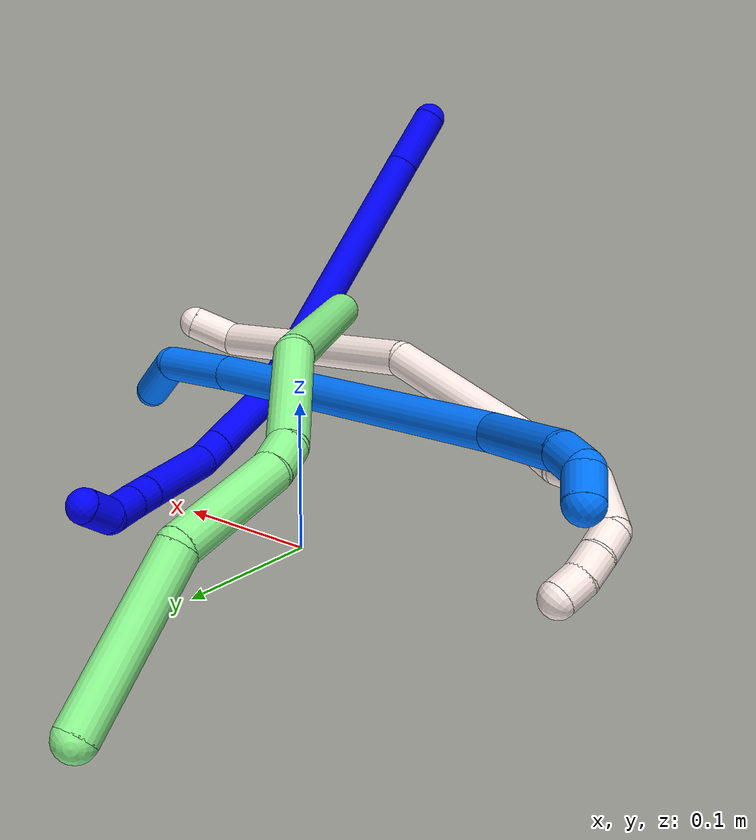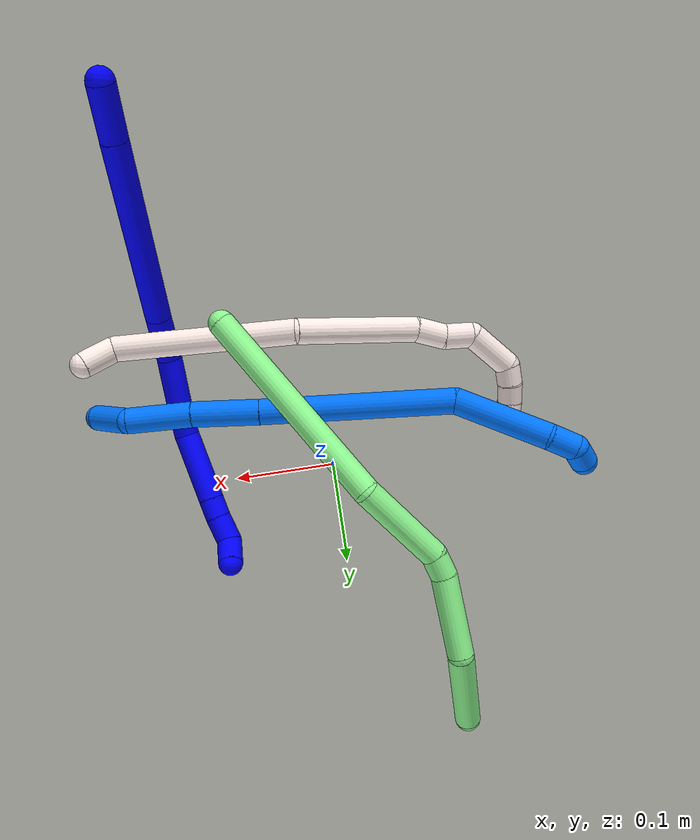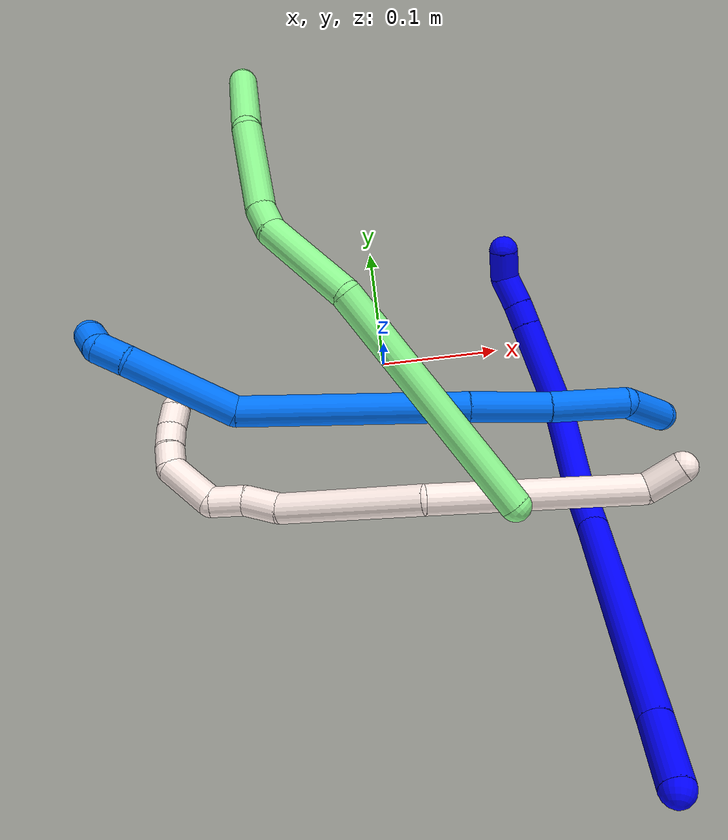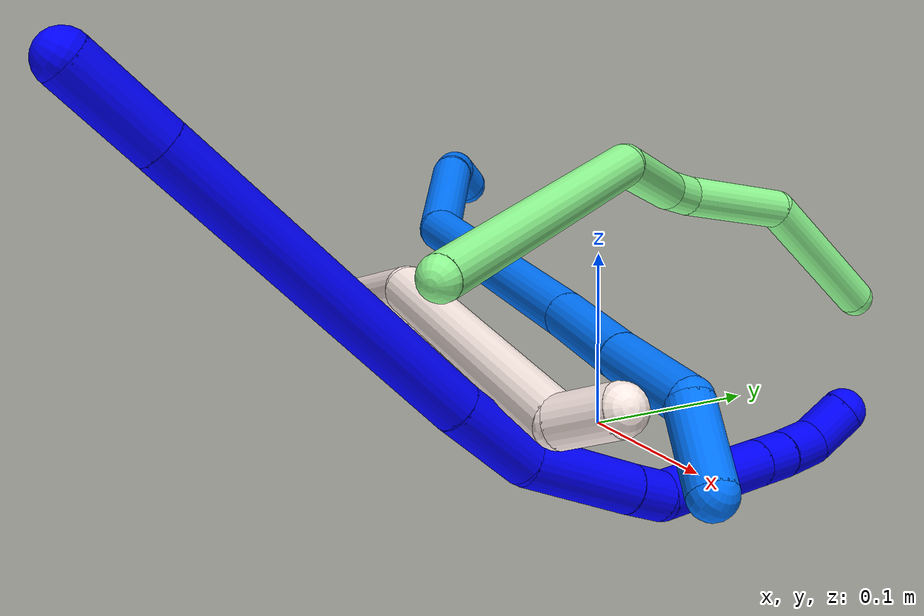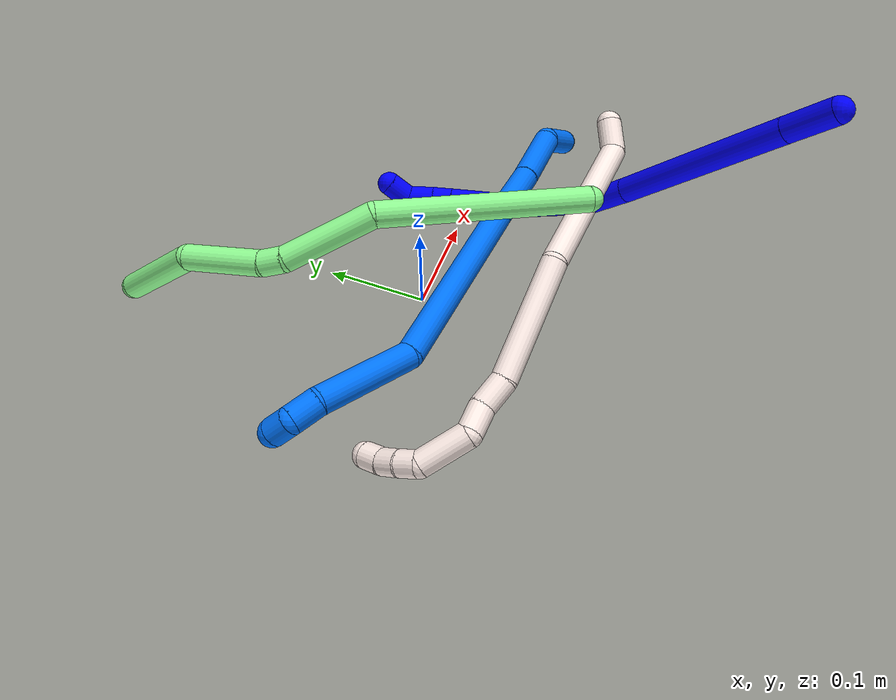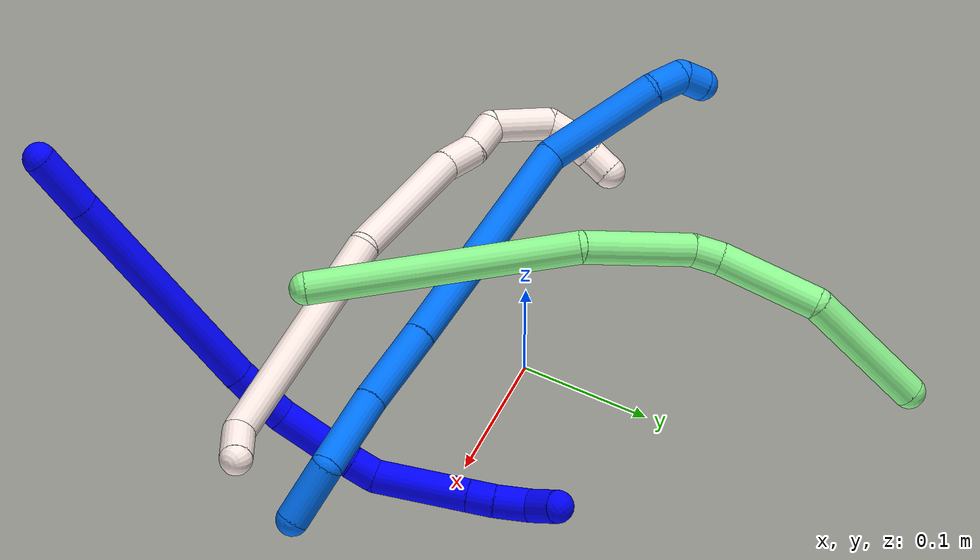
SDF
<sdf version="1.7">
 <world name="default">
  <model name="1">
   <static>0</static>
   <link name="1">
    <collision name="collision-cylinder-e_1_1_4">
     <pose>-0.006807 0.001019 -0.023368 -3.09799 -0.283187 2.83804</pose>
     <geometry><cylinder><radius>0.0125</radius><length>0.048721</length></cylinder></geometry>
     <surface>
      <friction><ode><mu>1.16</mu><mu2>1.16</mu2><slip1>0</slip1><slip2>0</slip2></ode></friction>
      <contact><ode><kp>1e+06</kp><kd>1</kd><max_vel>0</max_vel><min_depth>0.001</min_depth></ode></contact>
     </surface>
    </collision>
    <visual name="visual-cylinder-e_1_1_4">
     <pose>-0.006807 0.001019 -0.023368 -3.09799 -0.283187 2.83804</pose>
     <geometry><cylinder><radius>0.0125</radius><length>0.048721</length></cylinder></geometry>
     <material><ambient>0 0 1 1</ambient></material>
    </visual>
    <collision name="collision-cylinder-e_2_4_5">
     <pose>-0.038984 0.00664 -0.131739 -3.08752 -0.289648 2.7749</pose>
     <geometry><cylinder><radius>0.0125</radius><length>0.177655</length></cylinder></geometry>
     <surface>
      <friction><ode><mu>1.16</mu><mu2>1.16</mu2><slip1>0</slip1><slip2>0</slip2></ode></friction>
      <contact><ode><kp>1e+06</kp><kd>1</kd><max_vel>0</max_vel><min_depth>0.001</min_depth></ode></contact>
     </surface>
    </collision>
    <visual name="visual-cylinder-e_2_4_5">
     <pose>-0.038984 0.00664 -0.131739 -3.08752 -0.289648 2.7749</pose>
     <geometry><cylinder><radius>0.0125</radius><length>0.177655</length></cylinder></geometry>
     <material><ambient>0 0 1 1</ambient></material>
    </visual>
    <collision name="collision-cylinder-e_3_5_6">
     <pose>-0.07047 0.013985 -0.239317 -3.02064 -0.262702 2.28206</pose>
     <geometry><cylinder><radius>0.0125</radius><length>0.047098</length></cylinder></geometry>
     <surface>
      <friction><ode><mu>1.16</mu><mu2>1.16</mu2><slip1>0</slip1><slip2>0</slip2></ode></friction>
      <contact><ode><kp>1e+06</kp><kd>1</kd><max_vel>0</max_vel><min_depth>0.001</min_depth></ode></contact>
     </surface>
    </collision>
    <visual name="visual-cylinder-e_3_5_6">
     <pose>-0.07047 0.013985 -0.239317 -3.02064 -0.262702 2.28206</pose>
     <geometry><cylinder><radius>0.0125</radius><length>0.047098</length></cylinder></geometry>
     <material><ambient>0 0 1 1</ambient></material>
    </visual>
    <collision name="collision-cylinder-e_4_6_7">
     <pose>-0.077119 0.026643 -0.291394 -2.81739 -0.017132 0.104667</pose>
     <geometry><cylinder><radius>0.0125</radius><length>0.062255</length></cylinder></geometry>
     <surface>
      <friction><ode><mu>1.16</mu><mu2>1.16</mu2><slip1>0</slip1><slip2>0</slip2></ode></friction>
      <contact><ode><kp>1e+06</kp><kd>1</kd><max_vel>0</max_vel><min_depth>0.001</min_depth></ode></contact>
     </surface>
    </collision>
    <visual name="visual-cylinder-e_4_6_7">
     <pose>-0.077119 0.026643 -0.291394 -2.81739 -0.017132 0.104667</pose>
     <geometry><cylinder><radius>0.0125</radius><length>0.062255</length></cylinder></geometry>
     <material><ambient>0 0 1 1</ambient></material>
    </visual>
    <collision name="collision-cylinder-e_5_7_8">
     <pose>-0.077908 0.040352 -0.330504 -2.76549 -0.02479 0.130088</pose>
     <geometry><cylinder><radius>0.0125</radius><length>0.020668</length></cylinder></geometry>
     <surface>
      <friction><ode><mu>1.16</mu><mu2>1.16</mu2><slip1>0</slip1><slip2>0</slip2></ode></friction>
      <contact><ode><kp>1e+06</kp><kd>1</kd><max_vel>0</max_vel><min_depth>0.001</min_depth></ode></contact>
     </surface>
    </collision>
    <visual name="visual-cylinder-e_5_7_8">
     <pose>-0.077908 0.040352 -0.330504 -2.76549 -0.02479 0.130088</pose>
     <geometry><cylinder><radius>0.0125</radius><length>0.020668</length></cylinder></geometry>
     <material><ambient>0 0 1 1</ambient></material>
    </visual>
    <collision name="collision-cylinder-e_6_8_9">
     <pose>-0.072587 0.067849 -0.365858 -2.39749 0.158039 -0.4004</pose>
     <geometry><cylinder><radius>0.0125</radius><length>0.070873</length></cylinder></geometry>
     <surface>
      <friction><ode><mu>1.16</mu><mu2>1.16</mu2><slip1>0</slip1><slip2>0</slip2></ode></friction>
      <contact><ode><kp>1e+06</kp><kd>1</kd><max_vel>0</max_vel><min_depth>0.001</min_depth></ode></contact>
     </surface>
    </collision>
    <visual name="visual-cylinder-e_6_8_9">
     <pose>-0.072587 0.067849 -0.365858 -2.39749 0.158039 -0.4004</pose>
     <geometry><cylinder><radius>0.0125</radius><length>0.070873</length></cylinder></geometry>
     <material><ambient>0 0 1 1</ambient></material>
    </visual>
    <collision name="collision-cylinder-e_7_9_10">
     <pose>-0.065475 0.098316 -0.398965 -2.39833 0.152343 -0.386751</pose>
     <geometry><cylinder><radius>0.0125</radius><length>0.02023</length></cylinder></geometry>
     <surface>
      <friction><ode><mu>1.16</mu><mu2>1.16</mu2><slip1>0</slip1><slip2>0</slip2></ode></friction>
      <contact><ode><kp>1e+06</kp><kd>1</kd><max_vel>0</max_vel><min_depth>0.001</min_depth></ode></contact>
     </surface>
    </collision>
    <visual name="visual-cylinder-e_7_9_10">
     <pose>-0.065475 0.098316 -0.398965 -2.39833 0.152343 -0.386751</pose>
     <geometry><cylinder><radius>0.0125</radius><length>0.02023</length></cylinder></geometry>
     <material><ambient>0 0 1 1</ambient></material>
    </visual>
    <collision name="collision-cylinder-e_8_10_11">
     <pose>-0.062415 0.114844 -0.415464 -2.3232 0.113578 -0.260693</pose>
     <geometry><cylinder><radius>0.0125</radius><length>0.026917</length></cylinder></geometry>
     <surface>
      <friction><ode><mu>1.16</mu><mu2>1.16</mu2><slip1>0</slip1><slip2>0</slip2></ode></friction>
      <contact><ode><kp>1e+06</kp><kd>1</kd><max_vel>0</max_vel><min_depth>0.001</min_depth></ode></contact>
     </surface>
    </collision>
    <visual name="visual-cylinder-e_8_10_11">
     <pose>-0.062415 0.114844 -0.415464 -2.3232 0.113578 -0.260693</pose>
     <geometry><cylinder><radius>0.0125</radius><length>0.026917</length></cylinder></geometry>
     <material><ambient>0 0 1 1</ambient></material>
    </visual>
    <collision name="collision-cylinder-e_9_11_2">
     <pose>-0.052453 0.132928 -0.429419 -2.09543 0.72025 -1.15693</pose>
     <geometry><cylinder><radius>0.0125</radius><length>0.025582</length></cylinder></geometry>
     <surface>
      <friction><ode><mu>1.16</mu><mu2>1.16</mu2><slip1>0</slip1><slip2>0</slip2></ode></friction>
      <contact><ode><kp>1e+06</kp><kd>1</kd><max_vel>0</max_vel><min_depth>0.001</min_depth></ode></contact>
     </surface>
    </collision>
    <visual name="visual-cylinder-e_9_11_2">
     <pose>-0.052453 0.132928 -0.429419 -2.09543 0.72025 -1.15693</pose>
     <geometry><cylinder><radius>0.0125</radius><length>0.025582</length></cylinder></geometry>
     <material><ambient>0 0 1 1</ambient></material>
    </visual>
    <collision name="collision-sphere-2">
     <pose>-0.044016 0.141249 -0.434234 0 -0 0</pose>
     <geometry><sphere><radius>0.0125</radius></sphere></geometry>
     <surface>
      <friction><ode><mu>1.16</mu><mu2>1.16</mu2><slip1>0</slip1><slip2>0</slip2></ode></friction>
      <contact><ode><kp>1e+06</kp><kd>1</kd><max_vel>0</max_vel><min_depth>0.001</min_depth></ode></contact>
     </surface>
    </collision>
    <visual name="visual-sphere-2">
     <pose>-0.044016 0.141249 -0.434234 0 -0 0</pose>
     <geometry><sphere><radius>0.0125</radius></sphere></geometry>
     <material><ambient>0 0 1 1</ambient></material>
    </visual>
    <collision name="collision-sphere-11">
     <pose>-0.060889 0.124606 -0.424603 0 -0 0</pose>
     <geometry><sphere><radius>0.0125</radius></sphere></geometry>
     <surface>
      <friction><ode><mu>1.16</mu><mu2>1.16</mu2><slip1>0</slip1><slip2>0</slip2></ode></friction>
      <contact><ode><kp>1e+06</kp><kd>1</kd><max_vel>0</max_vel><min_depth>0.001</min_depth></ode></contact>
     </surface>
    </collision>
    <visual name="visual-sphere-11">
     <pose>-0.060889 0.124606 -0.424603 0 -0 0</pose>
     <geometry><sphere><radius>0.0125</radius></sphere></geometry>
     <material><ambient>0 0 1 1</ambient></material>
    </visual>
    <collision name="collision-sphere-10">
     <pose>-0.06394 0.105082 -0.406326 0 -0 0</pose>
     <geometry><sphere><radius>0.0125</radius></sphere></geometry>
     <surface>
      <friction><ode><mu>1.16</mu><mu2>1.16</mu2><slip1>0</slip1><slip2>0</slip2></ode></friction>
      <contact><ode><kp>1e+06</kp><kd>1</kd><max_vel>0</max_vel><min_depth>0.001</min_depth></ode></contact>
     </surface>
    </collision>
    <visual name="visual-sphere-10">
     <pose>-0.06394 0.105082 -0.406326 0 -0 0</pose>
     <geometry><sphere><radius>0.0125</radius></sphere></geometry>
     <material><ambient>0 0 1 1</ambient></material>
    </visual>
    <collision name="collision-sphere-9">
     <pose>-0.06701 0.091551 -0.391604 0 -0 0</pose>
     <geometry><sphere><radius>0.0125</radius></sphere></geometry>
     <surface>
      <friction><ode><mu>1.16</mu><mu2>1.16</mu2><slip1>0</slip1><slip2>0</slip2></ode></friction>
      <contact><ode><kp>1e+06</kp><kd>1</kd><max_vel>0</max_vel><min_depth>0.001</min_depth></ode></contact>
     </surface>
    </collision>
    <visual name="visual-sphere-9">
     <pose>-0.06701 0.091551 -0.391604 0 -0 0</pose>
     <geometry><sphere><radius>0.0125</radius></sphere></geometry>
     <material><ambient>0 0 1 1</ambient></material>
    </visual>
    <collision name="collision-sphere-4">
     <pose>-0.013614 0.002039 -0.046736 0 -0 0</pose>
     <geometry><sphere><radius>0.0125</radius></sphere></geometry>
     <surface>
      <friction><ode><mu>1.16</mu><mu2>1.16</mu2><slip1>0</slip1><slip2>0</slip2></ode></friction>
      <contact><ode><kp>1e+06</kp><kd>1</kd><max_vel>0</max_vel><min_depth>0.001</min_depth></ode></contact>
     </surface>
    </collision>
    <visual name="visual-sphere-4">
     <pose>-0.013614 0.002039 -0.046736 0 -0 0</pose>
     <geometry><sphere><radius>0.0125</radius></sphere></geometry>
     <material><ambient>0 0 1 1</ambient></material>
    </visual>
    <collision name="collision-sphere-1">
     <geometry><sphere><radius>0.0125</radius></sphere></geometry>
     <surface>
      <friction><ode><mu>1.16</mu><mu2>1.16</mu2><slip1>0</slip1><slip2>0</slip2></ode></friction>
      <contact><ode><kp>1e+06</kp><kd>1</kd><max_vel>0</max_vel><min_depth>0.001</min_depth></ode></contact>
     </surface>
    </collision>
    <visual name="visual-sphere-1">
     <geometry><sphere><radius>0.0125</radius></sphere></geometry>
     <material><ambient>0 0 1 1</ambient></material>
    </visual>
    <collision name="collision-sphere-8">
     <pose>-0.078164 0.044146 -0.340113 0 -0 0</pose>
     <geometry><sphere><radius>0.0125</radius></sphere></geometry>
     <surface>
      <friction><ode><mu>1.16</mu><mu2>1.16</mu2><slip1>0</slip1><slip2>0</slip2></ode></friction>
      <contact><ode><kp>1e+06</kp><kd>1</kd><max_vel>0</max_vel><min_depth>0.001</min_depth></ode></contact>
     </surface>
    </collision>
    <visual name="visual-sphere-8">
     <pose>-0.078164 0.044146 -0.340113 0 -0 0</pose>
     <geometry><sphere><radius>0.0125</radius></sphere></geometry>
     <material><ambient>0 0 1 1</ambient></material>
    </visual>
    <collision name="collision-sphere-5">
     <pose>-0.064354 0.011241 -0.216742 0 -0 0</pose>
     <geometry><sphere><radius>0.0125</radius></sphere></geometry>
     <surface>
      <friction><ode><mu>1.16</mu><mu2>1.16</mu2><slip1>0</slip1><slip2>0</slip2></ode></friction>
      <contact><ode><kp>1e+06</kp><kd>1</kd><max_vel>0</max_vel><min_depth>0.001</min_depth></ode></contact>
     </surface>
    </collision>
    <visual name="visual-sphere-5">
     <pose>-0.064354 0.011241 -0.216742 0 -0 0</pose>
     <geometry><sphere><radius>0.0125</radius></sphere></geometry>
     <material><ambient>0 0 1 1</ambient></material>
    </visual>
    <collision name="collision-sphere-6">
     <pose>-0.076585 0.016729 -0.261892 0 -0 0</pose>
     <geometry><sphere><radius>0.0125</radius></sphere></geometry>
     <surface>
      <friction><ode><mu>1.16</mu><mu2>1.16</mu2><slip1>0</slip1><slip2>0</slip2></ode></friction>
      <contact><ode><kp>1e+06</kp><kd>1</kd><max_vel>0</max_vel><min_depth>0.001</min_depth></ode></contact>
     </surface>
    </collision>
    <visual name="visual-sphere-6">
     <pose>-0.076585 0.016729 -0.261892 0 -0 0</pose>
     <geometry><sphere><radius>0.0125</radius></sphere></geometry>
     <material><ambient>0 0 1 1</ambient></material>
    </visual>
    <collision name="collision-sphere-7">
     <pose>-0.077652 0.036557 -0.320895 0 -0 0</pose>
     <geometry><sphere><radius>0.0125</radius></sphere></geometry>
     <surface>
      <friction><ode><mu>1.16</mu><mu2>1.16</mu2><slip1>0</slip1><slip2>0</slip2></ode></friction>
      <contact><ode><kp>1e+06</kp><kd>1</kd><max_vel>0</max_vel><min_depth>0.001</min_depth></ode></contact>
     </surface>
    </collision>
    <visual name="visual-sphere-7">
     <pose>-0.077652 0.036557 -0.320895 0 -0 0</pose>
     <geometry><sphere><radius>0.0125</radius></sphere></geometry>
     <material><ambient>0 0 1 1</ambient></material>
    </visual>
    <inertial>
     <pose>-0.052957 0.03534 -0.23391 0 -0 0</pose>
     <mass>0.5</mass>
     <inertia><ixx>-0.000226</ixx><ixy>0</ixy><ixz>0</ixz><iyy>0.00059</iyy><iyz>0</iyz><izz>4e-05</izz></inertia>
    </inertial>
   </link>
   <pose>0.14049 -0.321843 0.238821 0.642828 -0.808695 0.463553</pose>
  </model>
  <model name="11">
   <static>0</static>
   <link name="11">
    <collision name="collision-cylinder-e_1_1_4">
     <pose>0.003467 -0.008188 -0.014255 2.62019 0.20785 0.7454</pose>
     <geometry><cylinder><radius>0.0125</radius><length>0.033602</length></cylinder></geometry>
     <surface>
      <friction><ode><mu>1.16</mu><mu2>1.16</mu2><slip1>0</slip1><slip2>0</slip2></ode></friction>
      <contact><ode><kp>1e+06</kp><kd>1</kd><max_vel>0</max_vel><min_depth>0.001</min_depth></ode></contact>
     </surface>
    </collision>
    <visual name="visual-cylinder-e_1_1_4">
     <pose>0.003467 -0.008188 -0.014255 2.62019 0.20785 0.7454</pose>
     <geometry><cylinder><radius>0.0125</radius><length>0.033602</length></cylinder></geometry>
     <material><ambient>1 0.933333 0.909804 1</ambient></material>
    </visual>
    <collision name="collision-cylinder-e_2_4_5">
     <pose>-0.029604 -0.039464 -0.106147 2.85255 -0.423766 -1.95196</pose>
     <geometry><cylinder><radius>0.0125</radius><length>0.177714</length></cylinder></geometry>
     <surface>
      <friction><ode><mu>1.16</mu><mu2>1.16</mu2><slip1>0</slip1><slip2>0</slip2></ode></friction>
      <contact><ode><kp>1e+06</kp><kd>1</kd><max_vel>0</max_vel><min_depth>0.001</min_depth></ode></contact>
     </surface>
    </collision>
    <visual name="visual-cylinder-e_2_4_5">
     <pose>-0.029604 -0.039464 -0.106147 2.85255 -0.423766 -1.95196</pose>
     <geometry><cylinder><radius>0.0125</radius><length>0.177714</length></cylinder></geometry>
     <material><ambient>1 0.933333 0.909804 1</ambient></material>
    </visual>
    <collision name="collision-cylinder-e_3_5_6">
     <pose>-0.069686 -0.069605 -0.243657 3.02431 -0.058727 -0.927745</pose>
     <geometry><cylinder><radius>0.0125</radius><length>0.120783</length></cylinder></geometry>
     <surface>
      <friction><ode><mu>1.16</mu><mu2>1.16</mu2><slip1>0</slip1><slip2>0</slip2></ode></friction>
      <contact><ode><kp>1e+06</kp><kd>1</kd><max_vel>0</max_vel><min_depth>0.001</min_depth></ode></contact>
     </surface>
    </collision>
    <visual name="visual-cylinder-e_3_5_6">
     <pose>-0.069686 -0.069605 -0.243657 3.02431 -0.058727 -0.927745</pose>
     <geometry><cylinder><radius>0.0125</radius><length>0.120783</length></cylinder></geometry>
     <material><ambient>1 0.933333 0.909804 1</ambient></material>
    </visual>
    <collision name="collision-cylinder-e_4_6_7">
     <pose>-0.076352 -0.074884 -0.318379 -3.02253 -0.205761 2.09447</pose>
     <geometry><cylinder><radius>0.0125</radius><length>0.030553</length></cylinder></geometry>
     <surface>
      <friction><ode><mu>1.16</mu><mu2>1.16</mu2><slip1>0</slip1><slip2>0</slip2></ode></friction>
      <contact><ode><kp>1e+06</kp><kd>1</kd><max_vel>0</max_vel><min_depth>0.001</min_depth></ode></contact>
     </surface>
    </collision>
    <visual name="visual-cylinder-e_4_6_7">
     <pose>-0.076352 -0.074884 -0.318379 -3.02253 -0.205761 2.09447</pose>
     <geometry><cylinder><radius>0.0125</radius><length>0.030553</length></cylinder></geometry>
     <material><ambient>1 0.933333 0.909804 1</ambient></material>
    </visual>
    <collision name="collision-cylinder-e_5_7_8">
     <pose>-0.083267 -0.07595 -0.346376 2.92866 -0.274924 -1.82604</pose>
     <geometry><cylinder><radius>0.0125</radius><length>0.027954</length></cylinder></geometry>
     <surface>
      <friction><ode><mu>1.16</mu><mu2>1.16</mu2><slip1>0</slip1><slip2>0</slip2></ode></friction>
      <contact><ode><kp>1e+06</kp><kd>1</kd><max_vel>0</max_vel><min_depth>0.001</min_depth></ode></contact>
     </surface>
    </collision>
    <visual name="visual-cylinder-e_5_7_8">
     <pose>-0.083267 -0.07595 -0.346376 2.92866 -0.274924 -1.82604</pose>
     <geometry><cylinder><radius>0.0125</radius><length>0.027954</length></cylinder></geometry>
     <material><ambient>1 0.933333 0.909804 1</ambient></material>
    </visual>
    <collision name="collision-cylinder-e_6_8_9">
     <pose>-0.091344 -0.066158 -0.380263 -2.59441 -0.174553 0.604492</pose>
     <geometry><cylinder><radius>0.0125</radius><length>0.049318</length></cylinder></geometry>
     <surface>
      <friction><ode><mu>1.16</mu><mu2>1.16</mu2><slip1>0</slip1><slip2>0</slip2></ode></friction>
      <contact><ode><kp>1e+06</kp><kd>1</kd><max_vel>0</max_vel><min_depth>0.001</min_depth></ode></contact>
     </surface>
    </collision>
    <visual name="visual-cylinder-e_6_8_9">
     <pose>-0.091344 -0.066158 -0.380263 -2.59441 -0.174553 0.604492</pose>
     <geometry><cylinder><radius>0.0125</radius><length>0.049318</length></cylinder></geometry>
     <material><ambient>1 0.933333 0.909804 1</ambient></material>
    </visual>
    <collision name="collision-cylinder-e_7_9_10">
     <pose>-0.096018 -0.044199 -0.404602 -1.93924 -0.039167 0.057097</pose>
     <geometry><cylinder><radius>0.0125</radius><length>0.020007</length></cylinder></geometry>
     <surface>
      <friction><ode><mu>1.16</mu><mu2>1.16</mu2><slip1>0</slip1><slip2>0</slip2></ode></friction>
      <contact><ode><kp>1e+06</kp><kd>1</kd><max_vel>0</max_vel><min_depth>0.001</min_depth></ode></contact>
     </surface>
    </collision>
    <visual name="visual-cylinder-e_7_9_10">
     <pose>-0.096018 -0.044199 -0.404602 -1.93924 -0.039167 0.057097</pose>
     <geometry><cylinder><radius>0.0125</radius><length>0.020007</length></cylinder></geometry>
     <material><ambient>1 0.933333 0.909804 1</ambient></material>
    </visual>
    <collision name="collision-cylinder-e_8_10_11">
     <pose>-0.095404 -0.025325 -0.411041 -1.85975 0.100673 -0.134865</pose>
     <geometry><cylinder><radius>0.0125</radius><length>0.020025</length></cylinder></geometry>
     <surface>
      <friction><ode><mu>1.16</mu><mu2>1.16</mu2><slip1>0</slip1><slip2>0</slip2></ode></friction>
      <contact><ode><kp>1e+06</kp><kd>1</kd><max_vel>0</max_vel><min_depth>0.001</min_depth></ode></contact>
     </surface>
    </collision>
    <visual name="visual-cylinder-e_8_10_11">
     <pose>-0.095404 -0.025325 -0.411041 -1.85975 0.100673 -0.134865</pose>
     <geometry><cylinder><radius>0.0125</radius><length>0.020025</length></cylinder></geometry>
     <material><ambient>1 0.933333 0.909804 1</ambient></material>
    </visual>
    <collision name="collision-cylinder-e_9_11_2">
     <pose>-0.094324 -0.005803 -0.414865 -1.66932 0.0073 -0.008058</pose>
     <geometry><cylinder><radius>0.0125</radius><length>0.020044</length></cylinder></geometry>
     <surface>
      <friction><ode><mu>1.16</mu><mu2>1.16</mu2><slip1>0</slip1><slip2>0</slip2></ode></friction>
      <contact><ode><kp>1e+06</kp><kd>1</kd><max_vel>0</max_vel><min_depth>0.001</min_depth></ode></contact>
     </surface>
    </collision>
    <visual name="visual-cylinder-e_9_11_2">
     <pose>-0.094324 -0.005803 -0.414865 -1.66932 0.0073 -0.008058</pose>
     <geometry><cylinder><radius>0.0125</radius><length>0.020044</length></cylinder></geometry>
     <material><ambient>1 0.933333 0.909804 1</ambient></material>
    </visual>
    <collision name="collision-sphere-2">
     <pose>-0.094251 0.00417 -0.415851 0 -0 0</pose>
     <geometry><sphere><radius>0.0125</radius></sphere></geometry>
     <surface>
      <friction><ode><mu>1.16</mu><mu2>1.16</mu2><slip1>0</slip1><slip2>0</slip2></ode></friction>
      <contact><ode><kp>1e+06</kp><kd>1</kd><max_vel>0</max_vel><min_depth>0.001</min_depth></ode></contact>
     </surface>
    </collision>
    <visual name="visual-sphere-2">
     <pose>-0.094251 0.00417 -0.415851 0 -0 0</pose>
     <geometry><sphere><radius>0.0125</radius></sphere></geometry>
     <material><ambient>1 0.933333 0.909804 1</ambient></material>
    </visual>
    <collision name="collision-sphere-11">
     <pose>-0.094397 -0.015776 -0.41388 0 -0 0</pose>
     <geometry><sphere><radius>0.0125</radius></sphere></geometry>
     <surface>
      <friction><ode><mu>1.16</mu><mu2>1.16</mu2><slip1>0</slip1><slip2>0</slip2></ode></friction>
      <contact><ode><kp>1e+06</kp><kd>1</kd><max_vel>0</max_vel><min_depth>0.001</min_depth></ode></contact>
     </surface>
    </collision>
    <visual name="visual-sphere-11">
     <pose>-0.094397 -0.015776 -0.41388 0 -0 0</pose>
     <geometry><sphere><radius>0.0125</radius></sphere></geometry>
     <material><ambient>1 0.933333 0.909804 1</ambient></material>
    </visual>
    <collision name="collision-sphere-10">
     <pose>-0.09641 -0.034874 -0.408202 0 -0 0</pose>
     <geometry><sphere><radius>0.0125</radius></sphere></geometry>
     <surface>
      <friction><ode><mu>1.16</mu><mu2>1.16</mu2><slip1>0</slip1><slip2>0</slip2></ode></friction>
      <contact><ode><kp>1e+06</kp><kd>1</kd><max_vel>0</max_vel><min_depth>0.001</min_depth></ode></contact>
     </surface>
    </collision>
    <visual name="visual-sphere-10">
     <pose>-0.09641 -0.034874 -0.408202 0 -0 0</pose>
     <geometry><sphere><radius>0.0125</radius></sphere></geometry>
     <material><ambient>1 0.933333 0.909804 1</ambient></material>
    </visual>
    <collision name="collision-sphere-9">
     <pose>-0.095627 -0.053524 -0.401002 0 -0 0</pose>
     <geometry><sphere><radius>0.0125</radius></sphere></geometry>
     <surface>
      <friction><ode><mu>1.16</mu><mu2>1.16</mu2><slip1>0</slip1><slip2>0</slip2></ode></friction>
      <contact><ode><kp>1e+06</kp><kd>1</kd><max_vel>0</max_vel><min_depth>0.001</min_depth></ode></contact>
     </surface>
    </collision>
    <visual name="visual-sphere-9">
     <pose>-0.095627 -0.053524 -0.401002 0 -0 0</pose>
     <geometry><sphere><radius>0.0125</radius></sphere></geometry>
     <material><ambient>1 0.933333 0.909804 1</ambient></material>
    </visual>
    <collision name="collision-sphere-4">
     <pose>0.006934 -0.016377 -0.02851 0 -0 0</pose>
     <geometry><sphere><radius>0.0125</radius></sphere></geometry>
     <surface>
      <friction><ode><mu>1.16</mu><mu2>1.16</mu2><slip1>0</slip1><slip2>0</slip2></ode></friction>
      <contact><ode><kp>1e+06</kp><kd>1</kd><max_vel>0</max_vel><min_depth>0.001</min_depth></ode></contact>
     </surface>
    </collision>
    <visual name="visual-sphere-4">
     <pose>0.006934 -0.016377 -0.02851 0 -0 0</pose>
     <geometry><sphere><radius>0.0125</radius></sphere></geometry>
     <material><ambient>1 0.933333 0.909804 1</ambient></material>
    </visual>
    <collision name="collision-sphere-1">
     <geometry><sphere><radius>0.0125</radius></sphere></geometry>
     <surface>
      <friction><ode><mu>1.16</mu><mu2>1.16</mu2><slip1>0</slip1><slip2>0</slip2></ode></friction>
      <contact><ode><kp>1e+06</kp><kd>1</kd><max_vel>0</max_vel><min_depth>0.001</min_depth></ode></contact>
     </surface>
    </collision>
    <visual name="visual-sphere-1">
     <geometry><sphere><radius>0.0125</radius></sphere></geometry>
     <material><ambient>1 0.933333 0.909804 1</ambient></material>
    </visual>
    <collision name="collision-sphere-8">
     <pose>-0.087062 -0.078793 -0.359524 0 -0 0</pose>
     <geometry><sphere><radius>0.0125</radius></sphere></geometry>
     <surface>
      <friction><ode><mu>1.16</mu><mu2>1.16</mu2><slip1>0</slip1><slip2>0</slip2></ode></friction>
      <contact><ode><kp>1e+06</kp><kd>1</kd><max_vel>0</max_vel><min_depth>0.001</min_depth></ode></contact>
     </surface>
    </collision>
    <visual name="visual-sphere-8">
     <pose>-0.087062 -0.078793 -0.359524 0 -0 0</pose>
     <geometry><sphere><radius>0.0125</radius></sphere></geometry>
     <material><ambient>1 0.933333 0.909804 1</ambient></material>
    </visual>
    <collision name="collision-sphere-5">
     <pose>-0.066141 -0.062551 -0.183784 0 -0 0</pose>
     <geometry><sphere><radius>0.0125</radius></sphere></geometry>
     <surface>
      <friction><ode><mu>1.16</mu><mu2>1.16</mu2><slip1>0</slip1><slip2>0</slip2></ode></friction>
      <contact><ode><kp>1e+06</kp><kd>1</kd><max_vel>0</max_vel><min_depth>0.001</min_depth></ode></contact>
     </surface>
    </collision>
    <visual name="visual-sphere-5">
     <pose>-0.066141 -0.062551 -0.183784 0 -0 0</pose>
     <geometry><sphere><radius>0.0125</radius></sphere></geometry>
     <material><ambient>1 0.933333 0.909804 1</ambient></material>
    </visual>
    <collision name="collision-sphere-6">
     <pose>-0.07323 -0.07666 -0.303531 0 -0 0</pose>
     <geometry><sphere><radius>0.0125</radius></sphere></geometry>
     <surface>
      <friction><ode><mu>1.16</mu><mu2>1.16</mu2><slip1>0</slip1><slip2>0</slip2></ode></friction>
      <contact><ode><kp>1e+06</kp><kd>1</kd><max_vel>0</max_vel><min_depth>0.001</min_depth></ode></contact>
     </surface>
    </collision>
    <visual name="visual-sphere-6">
     <pose>-0.07323 -0.07666 -0.303531 0 -0 0</pose>
     <geometry><sphere><radius>0.0125</radius></sphere></geometry>
     <material><ambient>1 0.933333 0.909804 1</ambient></material>
    </visual>
    <collision name="collision-sphere-7">
     <pose>-0.079473 -0.073107 -0.333228 0 -0 0</pose>
     <geometry><sphere><radius>0.0125</radius></sphere></geometry>
     <surface>
      <friction><ode><mu>1.16</mu><mu2>1.16</mu2><slip1>0</slip1><slip2>0</slip2></ode></friction>
      <contact><ode><kp>1e+06</kp><kd>1</kd><max_vel>0</max_vel><min_depth>0.001</min_depth></ode></contact>
     </surface>
    </collision>
    <visual name="visual-sphere-7">
     <pose>-0.079473 -0.073107 -0.333228 0 -0 0</pose>
     <geometry><sphere><radius>0.0125</radius></sphere></geometry>
     <material><ambient>1 0.933333 0.909804 1</ambient></material>
    </visual>
    <inertial>
     <pose>-0.056898 -0.049754 -0.223156 0 -0 0</pose>
     <mass>0.5</mass>
     <inertia>
      <ixx>-0.000576</ixx>
      <ixy>0</ixy>
      <ixz>0</ixz>
      <iyy>-0.00039</iyy>
      <iyz>0</iyz>
      <izz>0.000307</izz>
     </inertia>
    </inertial>
   </link>
   <pose>0.22127 -0.125092 0.090252 -0.72214 1.04139 -0.960795</pose>
  </model>
  <model name="13">
   <static>0</static>
   <link name="13">
    <collision name="collision-cylinder-e_1_1_4">
     <pose>-0.011246 0.006646 -0.101233 -3.07604 -0.110401 2.0705</pose>
     <geometry><cylinder><radius>0.0125</radius><length>0.204145</length></cylinder></geometry>
     <surface>
      <friction><ode><mu>1.16</mu><mu2>1.16</mu2><slip1>0</slip1><slip2>0</slip2></ode></friction>
      <contact><ode><kp>1e+06</kp><kd>1</kd><max_vel>0</max_vel><min_depth>0.001</min_depth></ode></contact>
     </surface>
    </collision>
    <visual name="visual-cylinder-e_1_1_4">
     <pose>-0.011246 0.006646 -0.101233 -3.07604 -0.110401 2.0705</pose>
     <geometry><cylinder><radius>0.0125</radius><length>0.204145</length></cylinder></geometry>
     <material><ambient>0.564706 0.984314 0.572549 1</ambient></material>
    </visual>
    <collision name="collision-cylinder-e_2_4_5">
     <pose>-0.011683 0.028987 -0.242719 -2.7698 0.245157 -1.15986</pose>
     <geometry><cylinder><radius>0.0125</radius><length>0.089072</length></cylinder></geometry>
     <surface>
      <friction><ode><mu>1.16</mu><mu2>1.16</mu2><slip1>0</slip1><slip2>0</slip2></ode></friction>
      <contact><ode><kp>1e+06</kp><kd>1</kd><max_vel>0</max_vel><min_depth>0.001</min_depth></ode></contact>
     </surface>
    </collision>
    <visual name="visual-cylinder-e_2_4_5">
     <pose>-0.011683 0.028987 -0.242719 -2.7698 0.245157 -1.15986</pose>
     <geometry><cylinder><radius>0.0125</radius><length>0.089072</length></cylinder></geometry>
     <material><ambient>0.564706 0.984314 0.572549 1</ambient></material>
    </visual>
    <collision name="collision-cylinder-e_3_5_6">
     <pose>-0.001378 0.050631 -0.292592 -2.58783 -0.044542 0.156446</pose>
     <geometry><cylinder><radius>0.0125</radius><length>0.022644</length></cylinder></geometry>
     <surface>
      <friction><ode><mu>1.16</mu><mu2>1.16</mu2><slip1>0</slip1><slip2>0</slip2></ode></friction>
      <contact><ode><kp>1e+06</kp><kd>1</kd><max_vel>0</max_vel><min_depth>0.001</min_depth></ode></contact>
     </surface>
    </collision>
    <visual name="visual-cylinder-e_3_5_6">
     <pose>-0.001378 0.050631 -0.292592 -2.58783 -0.044542 0.156446</pose>
     <geometry><cylinder><radius>0.0125</radius><length>0.022644</length></cylinder></geometry>
     <material><ambient>0.564706 0.984314 0.572549 1</ambient></material>
    </visual>
    <collision name="collision-cylinder-e_4_6_7">
     <pose>-0.012989 0.079136 -0.332618 -2.50332 -0.285355 0.820197</pose>
     <geometry><cylinder><radius>0.0125</radius><length>0.07891</length></cylinder></geometry>
     <surface>
      <friction><ode><mu>1.16</mu><mu2>1.16</mu2><slip1>0</slip1><slip2>0</slip2></ode></friction>
      <contact><ode><kp>1e+06</kp><kd>1</kd><max_vel>0</max_vel><min_depth>0.001</min_depth></ode></contact>
     </surface>
    </collision>
    <visual name="visual-cylinder-e_4_6_7">
     <pose>-0.012989 0.079136 -0.332618 -2.50332 -0.285355 0.820197</pose>
     <geometry><cylinder><radius>0.0125</radius><length>0.07891</length></cylinder></geometry>
     <material><ambient>0.564706 0.984314 0.572549 1</ambient></material>
    </visual>
    <collision name="collision-cylinder-e_5_7_2">
     <pose>-0.019569 0.146627 -0.390019 -2.11177 0.086135 -0.15203</pose>
     <geometry><cylinder><radius>0.0125</radius><length>0.105229</length></cylinder></geometry>
     <surface>
      <friction><ode><mu>1.16</mu><mu2>1.16</mu2><slip1>0</slip1><slip2>0</slip2></ode></friction>
      <contact><ode><kp>1e+06</kp><kd>1</kd><max_vel>0</max_vel><min_depth>0.001</min_depth></ode></contact>
     </surface>
    </collision>
    <visual name="visual-cylinder-e_5_7_2">
     <pose>-0.019569 0.146627 -0.390019 -2.11177 0.086135 -0.15203</pose>
     <geometry><cylinder><radius>0.0125</radius><length>0.105229</length></cylinder></geometry>
     <material><ambient>0.564706 0.984314 0.572549 1</ambient></material>
    </visual>
    <collision name="collision-sphere-2">
     <pose>-0.015042 0.191561 -0.417013 0 -0 0</pose>
     <geometry><sphere><radius>0.0125</radius></sphere></geometry>
     <surface>
      <friction><ode><mu>1.16</mu><mu2>1.16</mu2><slip1>0</slip1><slip2>0</slip2></ode></friction>
      <contact><ode><kp>1e+06</kp><kd>1</kd><max_vel>0</max_vel><min_depth>0.001</min_depth></ode></contact>
     </surface>
    </collision>
    <visual name="visual-sphere-2">
     <pose>-0.015042 0.191561 -0.417013 0 -0 0</pose>
     <geometry><sphere><radius>0.0125</radius></sphere></geometry>
     <material><ambient>0.564706 0.984314 0.572549 1</ambient></material>
    </visual>
    <collision name="collision-sphere-7">
     <pose>-0.024095 0.101693 -0.363024 0 -0 0</pose>
     <geometry><sphere><radius>0.0125</radius></sphere></geometry>
     <surface>
      <friction><ode><mu>1.16</mu><mu2>1.16</mu2><slip1>0</slip1><slip2>0</slip2></ode></friction>
      <contact><ode><kp>1e+06</kp><kd>1</kd><max_vel>0</max_vel><min_depth>0.001</min_depth></ode></contact>
     </surface>
    </collision>
    <visual name="visual-sphere-7">
     <pose>-0.024095 0.101693 -0.363024 0 -0 0</pose>
     <geometry><sphere><radius>0.0125</radius></sphere></geometry>
     <material><ambient>0.564706 0.984314 0.572549 1</ambient></material>
    </visual>
    <collision name="collision-sphere-6">
     <pose>-0.001882 0.056579 -0.302212 0 -0 0</pose>
     <geometry><sphere><radius>0.0125</radius></sphere></geometry>
     <surface>
      <friction><ode><mu>1.16</mu><mu2>1.16</mu2><slip1>0</slip1><slip2>0</slip2></ode></friction>
      <contact><ode><kp>1e+06</kp><kd>1</kd><max_vel>0</max_vel><min_depth>0.001</min_depth></ode></contact>
     </surface>
    </collision>
    <visual name="visual-sphere-6">
     <pose>-0.001882 0.056579 -0.302212 0 -0 0</pose>
     <geometry><sphere><radius>0.0125</radius></sphere></geometry>
     <material><ambient>0.564706 0.984314 0.572549 1</ambient></material>
    </visual>
    <collision name="collision-sphere-5">
     <pose>-0.000874 0.044682 -0.282971 0 -0 0</pose>
     <geometry><sphere><radius>0.0125</radius></sphere></geometry>
     <surface>
      <friction><ode><mu>1.16</mu><mu2>1.16</mu2><slip1>0</slip1><slip2>0</slip2></ode></friction>
      <contact><ode><kp>1e+06</kp><kd>1</kd><max_vel>0</max_vel><min_depth>0.001</min_depth></ode></contact>
     </surface>
    </collision>
    <visual name="visual-sphere-5">
     <pose>-0.000874 0.044682 -0.282971 0 -0 0</pose>
     <geometry><sphere><radius>0.0125</radius></sphere></geometry>
     <material><ambient>0.564706 0.984314 0.572549 1</ambient></material>
    </visual>
    <collision name="collision-sphere-1">
     <geometry><sphere><radius>0.0125</radius></sphere></geometry>
     <surface>
      <friction><ode><mu>1.16</mu><mu2>1.16</mu2><slip1>0</slip1><slip2>0</slip2></ode></friction>
      <contact><ode><kp>1e+06</kp><kd>1</kd><max_vel>0</max_vel><min_depth>0.001</min_depth></ode></contact>
     </surface>
    </collision>
    <visual name="visual-sphere-1">
     <geometry><sphere><radius>0.0125</radius></sphere></geometry>
     <material><ambient>0.564706 0.984314 0.572549 1</ambient></material>
    </visual>
    <collision name="collision-sphere-4">
     <pose>-0.022492 0.013292 -0.202467 0 -0 0</pose>
     <geometry><sphere><radius>0.0125</radius></sphere></geometry>
     <surface>
      <friction><ode><mu>1.16</mu><mu2>1.16</mu2><slip1>0</slip1><slip2>0</slip2></ode></friction>
      <contact><ode><kp>1e+06</kp><kd>1</kd><max_vel>0</max_vel><min_depth>0.001</min_depth></ode></contact>
     </surface>
    </collision>
    <visual name="visual-sphere-4">
     <pose>-0.022492 0.013292 -0.202467 0 -0 0</pose>
     <geometry><sphere><radius>0.0125</radius></sphere></geometry>
     <material><ambient>0.564706 0.984314 0.572549 1</ambient></material>
    </visual>
    <inertial>
     <pose>-0.012904 0.053518 -0.232399 0 -0 0</pose>
     <mass>0.5</mass>
     <inertia>
      <ixx>0.000398</ixx>
      <ixy>0</ixy>
      <ixz>0</ixz>
      <iyy>0.000859</iyy>
      <iyz>0</iyz>
      <izz>-0.000146</izz>
     </inertia>
    </inertial>
   </link>
   <pose>0.082719 -0.13918 0.119993 -1.70535 0.60666 -2.53172</pose>
  </model>
  <model name="14">
   <static>0</static>
   <link name="14">
    <collision name="collision-cylinder-e_1_1_4">
     <pose>-0.023627 0.003284 0.001952 -1.03443 -1.41048 0.901974</pose>
     <geometry><cylinder><radius>0.0125</radius><length>0.047867</length></cylinder></geometry>
     <surface>
      <friction><ode><mu>1.16</mu><mu2>1.16</mu2><slip1>0</slip1><slip2>0</slip2></ode></friction>
      <contact><ode><kp>1e+06</kp><kd>1</kd><max_vel>0</max_vel><min_depth>0.001</min_depth></ode></contact>
     </surface>
    </collision>
    <visual name="visual-cylinder-e_1_1_4">
     <pose>-0.023627 0.003284 0.001952 -1.03443 -1.41048 0.901974</pose>
     <geometry><cylinder><radius>0.0125</radius><length>0.047867</length></cylinder></geometry>
     <material><ambient>0 0.462745 1 1</ambient></material>
    </visual>
    <collision name="collision-cylinder-e_2_4_5">
     <pose>-0.07344 0.009801 -0.013452 -2.95743 -0.97759 2.79777</pose>
     <geometry><cylinder><radius>0.0125</radius><length>0.063164</length></cylinder></geometry>
     <surface>
      <friction><ode><mu>1.16</mu><mu2>1.16</mu2><slip1>0</slip1><slip2>0</slip2></ode></friction>
      <contact><ode><kp>1e+06</kp><kd>1</kd><max_vel>0</max_vel><min_depth>0.001</min_depth></ode></contact>
     </surface>
    </collision>
    <visual name="visual-cylinder-e_2_4_5">
     <pose>-0.07344 0.009801 -0.013452 -2.95743 -0.97759 2.79777</pose>
     <geometry><cylinder><radius>0.0125</radius><length>0.063164</length></cylinder></geometry>
     <material><ambient>0 0.462745 1 1</ambient></material>
    </visual>
    <collision name="collision-cylinder-e_3_5_6">
     <pose>-0.126615 0.018359 -0.04832 -2.84638 -0.974847 2.59464</pose>
     <geometry><cylinder><radius>0.0125</radius><length>0.06522</length></cylinder></geometry>
     <surface>
      <friction><ode><mu>1.16</mu><mu2>1.16</mu2><slip1>0</slip1><slip2>0</slip2></ode></friction>
      <contact><ode><kp>1e+06</kp><kd>1</kd><max_vel>0</max_vel><min_depth>0.001</min_depth></ode></contact>
     </surface>
    </collision>
    <visual name="visual-cylinder-e_3_5_6">
     <pose>-0.126615 0.018359 -0.04832 -2.84638 -0.974847 2.59464</pose>
     <geometry><cylinder><radius>0.0125</radius><length>0.06522</length></cylinder></geometry>
     <material><ambient>0 0.462745 1 1</ambient></material>
    </visual>
    <collision name="collision-cylinder-e_4_6_7">
     <pose>-0.229309 0.037198 -0.117056 -2.88367 -0.960231 2.65347</pose>
     <geometry><cylinder><radius>0.0125</radius><length>0.1848</length></cylinder></geometry>
     <surface>
      <friction><ode><mu>1.16</mu><mu2>1.16</mu2><slip1>0</slip1><slip2>0</slip2></ode></friction>
      <contact><ode><kp>1e+06</kp><kd>1</kd><max_vel>0</max_vel><min_depth>0.001</min_depth></ode></contact>
     </surface>
    </collision>
    <visual name="visual-cylinder-e_4_6_7">
     <pose>-0.229309 0.037198 -0.117056 -2.88367 -0.960231 2.65347</pose>
     <geometry><cylinder><radius>0.0125</radius><length>0.1848</length></cylinder></geometry>
     <material><ambient>0 0.462745 1 1</ambient></material>
    </visual>
    <collision name="collision-cylinder-e_5_7_8">
     <pose>-0.342857 0.074263 -0.180576 -2.05195 -0.958648 1.41786</pose>
     <geometry><cylinder><radius>0.0125</radius><length>0.092475</length></cylinder></geometry>
     <surface>
      <friction><ode><mu>1.16</mu><mu2>1.16</mu2><slip1>0</slip1><slip2>0</slip2></ode></friction>
      <contact><ode><kp>1e+06</kp><kd>1</kd><max_vel>0</max_vel><min_depth>0.001</min_depth></ode></contact>
     </surface>
    </collision>
    <visual name="visual-cylinder-e_5_7_8">
     <pose>-0.342857 0.074263 -0.180576 -2.05195 -0.958648 1.41786</pose>
     <geometry><cylinder><radius>0.0125</radius><length>0.092475</length></cylinder></geometry>
     <material><ambient>0 0.462745 1 1</ambient></material>
    </visual>
    <collision name="collision-cylinder-e_6_8_9">
     <pose>-0.389392 0.105275 -0.199022 -2.2603 -0.73241 1.36554</pose>
     <geometry><cylinder><radius>0.0125</radius><length>0.026003</length></cylinder></geometry>
     <surface>
      <friction><ode><mu>1.16</mu><mu2>1.16</mu2><slip1>0</slip1><slip2>0</slip2></ode></friction>
      <contact><ode><kp>1e+06</kp><kd>1</kd><max_vel>0</max_vel><min_depth>0.001</min_depth></ode></contact>
     </surface>
    </collision>
    <visual name="visual-cylinder-e_6_8_9">
     <pose>-0.389392 0.105275 -0.199022 -2.2603 -0.73241 1.36554</pose>
     <geometry><cylinder><radius>0.0125</radius><length>0.026003</length></cylinder></geometry>
     <material><ambient>0 0.462745 1 1</ambient></material>
    </visual>
    <collision name="collision-cylinder-e_7_9_2">
     <pose>-0.398032 0.120849 -0.211408 -2.22601 0.005189 -0.010532</pose>
     <geometry><cylinder><radius>0.0125</radius><length>0.02047</length></cylinder></geometry>
     <surface>
      <friction><ode><mu>1.16</mu><mu2>1.16</mu2><slip1>0</slip1><slip2>0</slip2></ode></friction>
      <contact><ode><kp>1e+06</kp><kd>1</kd><max_vel>0</max_vel><min_depth>0.001</min_depth></ode></contact>
     </surface>
    </collision>
    <visual name="visual-cylinder-e_7_9_2">
     <pose>-0.398032 0.120849 -0.211408 -2.22601 0.005189 -0.010532</pose>
     <geometry><cylinder><radius>0.0125</radius><length>0.02047</length></cylinder></geometry>
     <material><ambient>0 0.462745 1 1</ambient></material>
    </visual>
    <collision name="collision-sphere-2">
     <pose>-0.397979 0.128965 -0.217645 0 -0 0</pose>
     <geometry><sphere><radius>0.0125</radius></sphere></geometry>
     <surface>
      <friction><ode><mu>1.16</mu><mu2>1.16</mu2><slip1>0</slip1><slip2>0</slip2></ode></friction>
      <contact><ode><kp>1e+06</kp><kd>1</kd><max_vel>0</max_vel><min_depth>0.001</min_depth></ode></contact>
     </surface>
    </collision>
    <visual name="visual-sphere-2">
     <pose>-0.397979 0.128965 -0.217645 0 -0 0</pose>
     <geometry><sphere><radius>0.0125</radius></sphere></geometry>
     <material><ambient>0 0.462745 1 1</ambient></material>
    </visual>
    <collision name="collision-sphere-9">
     <pose>-0.398085 0.112734 -0.205172 0 -0 0</pose>
     <geometry><sphere><radius>0.0125</radius></sphere></geometry>
     <surface>
      <friction><ode><mu>1.16</mu><mu2>1.16</mu2><slip1>0</slip1><slip2>0</slip2></ode></friction>
      <contact><ode><kp>1e+06</kp><kd>1</kd><max_vel>0</max_vel><min_depth>0.001</min_depth></ode></contact>
     </surface>
    </collision>
    <visual name="visual-sphere-9">
     <pose>-0.398085 0.112734 -0.205172 0 -0 0</pose>
     <geometry><sphere><radius>0.0125</radius></sphere></geometry>
     <material><ambient>0 0.462745 1 1</ambient></material>
    </visual>
    <collision name="collision-sphere-4">
     <pose>-0.047254 0.006568 0.003905 0 -0 0</pose>
     <geometry><sphere><radius>0.0125</radius></sphere></geometry>
     <surface>
      <friction><ode><mu>1.16</mu><mu2>1.16</mu2><slip1>0</slip1><slip2>0</slip2></ode></friction>
      <contact><ode><kp>1e+06</kp><kd>1</kd><max_vel>0</max_vel><min_depth>0.001</min_depth></ode></contact>
     </surface>
    </collision>
    <visual name="visual-sphere-4">
     <pose>-0.047254 0.006568 0.003905 0 -0 0</pose>
     <geometry><sphere><radius>0.0125</radius></sphere></geometry>
     <material><ambient>0 0.462745 1 1</ambient></material>
    </visual>
    <collision name="collision-sphere-1">
     <geometry><sphere><radius>0.0125</radius></sphere></geometry>
     <surface>
      <friction><ode><mu>1.16</mu><mu2>1.16</mu2><slip1>0</slip1><slip2>0</slip2></ode></friction>
      <contact><ode><kp>1e+06</kp><kd>1</kd><max_vel>0</max_vel><min_depth>0.001</min_depth></ode></contact>
     </surface>
    </collision>
    <visual name="visual-sphere-1">
     <geometry><sphere><radius>0.0125</radius></sphere></geometry>
     <material><ambient>0 0.462745 1 1</ambient></material>
    </visual>
    <collision name="collision-sphere-8">
     <pose>-0.380698 0.097816 -0.192872 0 -0 0</pose>
     <geometry><sphere><radius>0.0125</radius></sphere></geometry>
     <surface>
      <friction><ode><mu>1.16</mu><mu2>1.16</mu2><slip1>0</slip1><slip2>0</slip2></ode></friction>
      <contact><ode><kp>1e+06</kp><kd>1</kd><max_vel>0</max_vel><min_depth>0.001</min_depth></ode></contact>
     </surface>
    </collision>
    <visual name="visual-sphere-8">
     <pose>-0.380698 0.097816 -0.192872 0 -0 0</pose>
     <geometry><sphere><radius>0.0125</radius></sphere></geometry>
     <material><ambient>0 0.462745 1 1</ambient></material>
    </visual>
    <collision name="collision-sphere-5">
     <pose>-0.099626 0.013034 -0.030808 0 -0 0</pose>
     <geometry><sphere><radius>0.0125</radius></sphere></geometry>
     <surface>
      <friction><ode><mu>1.16</mu><mu2>1.16</mu2><slip1>0</slip1><slip2>0</slip2></ode></friction>
      <contact><ode><kp>1e+06</kp><kd>1</kd><max_vel>0</max_vel><min_depth>0.001</min_depth></ode></contact>
     </surface>
    </collision>
    <visual name="visual-sphere-5">
     <pose>-0.099626 0.013034 -0.030808 0 -0 0</pose>
     <geometry><sphere><radius>0.0125</radius></sphere></geometry>
     <material><ambient>0 0.462745 1 1</ambient></material>
    </visual>
    <collision name="collision-sphere-6">
     <pose>-0.153604 0.023685 -0.065833 0 -0 0</pose>
     <geometry><sphere><radius>0.0125</radius></sphere></geometry>
     <surface>
      <friction><ode><mu>1.16</mu><mu2>1.16</mu2><slip1>0</slip1><slip2>0</slip2></ode></friction>
      <contact><ode><kp>1e+06</kp><kd>1</kd><max_vel>0</max_vel><min_depth>0.001</min_depth></ode></contact>
     </surface>
    </collision>
    <visual name="visual-sphere-6">
     <pose>-0.153604 0.023685 -0.065833 0 -0 0</pose>
     <geometry><sphere><radius>0.0125</radius></sphere></geometry>
     <material><ambient>0 0.462745 1 1</ambient></material>
    </visual>
    <collision name="collision-sphere-7">
     <pose>-0.305015 0.050711 -0.168279 0 -0 0</pose>
     <geometry><sphere><radius>0.0125</radius></sphere></geometry>
     <surface>
      <friction><ode><mu>1.16</mu><mu2>1.16</mu2><slip1>0</slip1><slip2>0</slip2></ode></friction>
      <contact><ode><kp>1e+06</kp><kd>1</kd><max_vel>0</max_vel><min_depth>0.001</min_depth></ode></contact>
     </surface>
    </collision>
    <visual name="visual-sphere-7">
     <pose>-0.305015 0.050711 -0.168279 0 -0 0</pose>
     <geometry><sphere><radius>0.0125</radius></sphere></geometry>
     <material><ambient>0 0.462745 1 1</ambient></material>
    </visual>
    <inertial>
     <pose>-0.212765 0.041853 -0.103482 0 -0 0</pose>
     <mass>0.5</mass>
     <inertia>
      <ixx>-0.000119</ixx>
      <ixy>0</ixy>
      <ixz>0</ixz>
      <iyy>0.000818</iyy>
      <iyz>0</iyz>
      <izz>0.000406</izz>
     </inertia>
    </inertial>
   </link>
   <pose>0.223857 -0.078961 0.044734 -0.269389 0.670221 -0.102682</pose>
  </model>
 </world>
</sdf>
